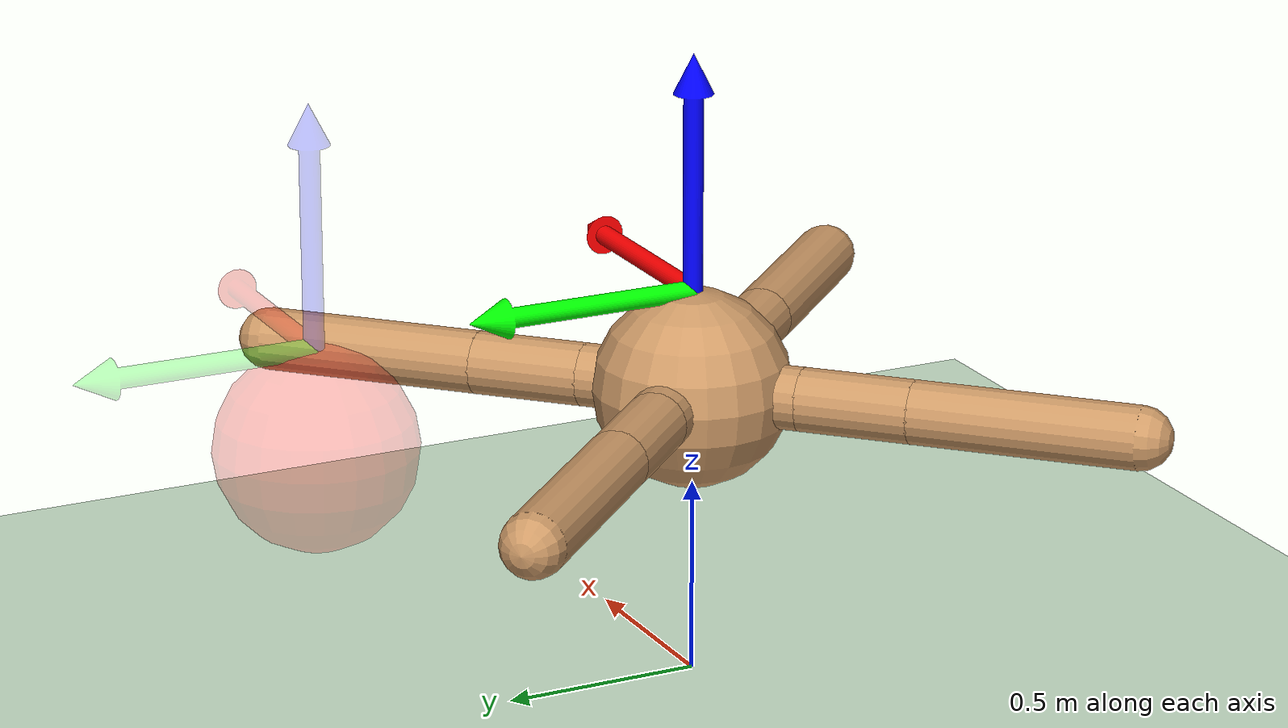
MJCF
<mujoco model="ant">
  <compiler angle="degree" coordinate="local" inertiafromgeom="true"/>
  <option integrator="RK4" timestep="0.01"/>
  <custom>
    <numeric data="0.0 0.0 0.55 1.0 0.0 0.0 0.0 0.0 1.0 0.0 -1.0 0.0 -1.0 0.0 1.0" name="init_qpos"/>
  </custom>
  <default>
    <joint armature="1" damping="1" limited="true"/>
    <geom conaffinity="0" condim="3" density="5.0" friction="1 0.5 0.5" margin="0.01" rgba="0.8 0.6 0.4 1"/>
  </default>
  <asset>
    <texture builtin="gradient" height="100" rgb1="1 1 1" rgb2="0 0 0" type="skybox" width="100"/>
    <texture builtin="flat" height="1278" mark="cross" markrgb="1 1 1" name="texgeom" random="0.01" rgb1="0.8 0.6 0.4" rgb2="0.8 0.6 0.4" type="cube" width="127"/>
    <texture builtin="checker" height="100" name="texplane" rgb1="0 0 0" rgb2="0.8 0.8 0.8" type="2d" width="100"/>
    <texture builtin="flat" name="x_tex" height="32" width="32" rgb1="0 0 1" type="cube"/>

    <material name="x_mat" shininess="0.03" specular="0.75" texture="x_tex"/>

    <material name="MatPlane" reflectance="0.5" shininess="1" specular="1" texrepeat="60 60" texture="texplane"/>
    <material name="geom" texture="texgeom" texuniform="true"/>
    <mesh file="arrow.stl" name="arr_x" refquat="0 0.7071068 0 0.7071068" scale="0.5 0.5 0.5"/>
    <mesh file="arrow.stl" name="arr_y" refquat="0.7071068 0.7071068 0 0" scale="0.5 0.5 0.5"/>
    <mesh file="arrow.stl" name="arr_z" scale="0.5 0.5 0.5"/>

  </asset>
  <worldbody>
    <light cutoff="100" diffuse="1 1 1" dir="-0 0 -1.3" directional="true" exponent="1" pos="0 0 1.3" specular=".1 .1 .1"/>
    <geom conaffinity="1" condim="3" material="MatPlane" name="floor" pos="0 0 0" rgba="0.8 0.9 0.8 1" size="40 40 40" type="plane"/>

    <body name="torso" pos="0 0 0.75">
      <camera name="track" mode="trackcom" pos="0 -4 0.7" xyaxes="1 0 0 0 0.2 1"/>

      <geom name="torso_geom" pos="0 0 0" size="0.25" type="sphere"/>
      <geom type="mesh" mesh="arr_x" name="ax" rgba="1 0 0 1" pos="0 0 0.25" mass="0" contype="0" conaffinity="0"/>
		  <geom type="mesh" mesh="arr_y" name="ay" rgba="0 1 0 1" pos="0 0 0.25" mass="0" contype="0" conaffinity="0"/>
      <geom type="mesh" mesh="arr_z" name="az" rgba="0 0 1 1" pos="0 0 0.25" mass="0" contype="0" conaffinity="0"/>
      <joint armature="0" damping="0" limited="false" margin="0.01" name="root" pos="0 0 0" type="free"/>
      <body name="front_left_leg" pos="0 0 0">
        <geom fromto="0.0 0.0 0.0 0.2 0.2 0.0" name="aux_1_geom" size="0.08" type="capsule"/>
        <body name="aux_1" pos="0.2 0.2 0">
          <joint axis="0 0 1" name="hip_1" pos="0.0 0.0 0.0" range="-30 30" type="hinge"/>
          <geom fromto="0.0 0.0 0.0 0.2 0.2 0.0" name="left_leg_geom" size="0.08" type="capsule"/>
          <body pos="0.2 0.2 0">
            <joint axis="-1 1 0" name="ankle_1" pos="0.0 0.0 0.0" range="30 70" type="hinge"/>
            <geom fromto="0.0 0.0 0.0 0.4 0.4 0.0" name="left_ankle_geom" size="0.08" type="capsule"/>
          </body>
        </body>
      </body>
      <body name="front_right_leg" pos="0 0 0">
        <geom fromto="0.0 0.0 0.0 -0.2 0.2 0.0" name="aux_2_geom" size="0.08" type="capsule"/>
        <body name="aux_2" pos="-0.2 0.2 0">
          <joint axis="0 0 1" name="hip_2" pos="0.0 0.0 0.0" range="-30 30" type="hinge"/>
          <geom fromto="0.0 0.0 0.0 -0.2 0.2 0.0" name="right_leg_geom" size="0.08" type="capsule"/>
          <body pos="-0.2 0.2 0">
            <joint axis="1 1 0" name="ankle_2" pos="0.0 0.0 0.0" range="-70 -30" type="hinge"/>
            <geom fromto="0.0 0.0 0.0 -0.4 0.4 0.0" name="right_ankle_geom" size="0.08" type="capsule"/>
          </body>
        </body>
      </body>
      <body name="back_leg" pos="0 0 0">
        <geom fromto="0.0 0.0 0.0 -0.2 -0.2 0.0" name="aux_3_geom" size="0.08" type="capsule"/>
        <body name="aux_3" pos="-0.2 -0.2 0">
          <joint axis="0 0 1" name="hip_3" pos="0.0 0.0 0.0" range="-30 30" type="hinge"/>
          <geom fromto="0.0 0.0 0.0 -0.2 -0.2 0.0" name="back_leg_geom" size="0.08" type="capsule"/>
          <body pos="-0.2 -0.2 0">
            <joint axis="-1 1 0" name="ankle_3" pos="0.0 0.0 0.0" range="-70 -30" type="hinge"/>
            <geom fromto="0.0 0.0 0.0 -0.4 -0.4 0.0" name="third_ankle_geom" size="0.08" type="capsule"/>
          </body>
        </body>
      </body>
      <body name="right_back_leg" pos="0 0 0">
        <geom fromto="0.0 0.0 0.0 0.2 -0.2 0.0" name="aux_4_geom" size="0.08" type="capsule"/>
        <body name="aux_4" pos="0.2 -0.2 0">
          <joint axis="0 0 1" name="hip_4" pos="0.0 0.0 0.0" range="-30 30" type="hinge"/>
          <geom fromto="0.0 0.0 0.0 0.2 -0.2 0.0" name="rightback_leg_geom" size="0.08" type="capsule"/>
          <body pos="0.2 -0.2 0">
            <joint axis="1 1 0" name="ankle_4" pos="0.0 0.0 0.0" range="30 70" type="hinge"/>
            <geom fromto="0.0 0.0 0.0 0.4 -0.4 0.0" name="fourth_ankle_geom" size="0.08" type="capsule"/>
          </body>
        </body>
      </body>
    </body>
    <body name="goal" pos="0 1 0.75">
      <geom name="goal_geom" pos="0 0 0" size="0.25" rgba="1 0 0 .25" contype="0" conaffinity="0" type="sphere"/>

      <geom type="mesh" mesh="arr_x" name="gax" rgba="1 0 0 .25" pos="0 0 0.25" contype="0" conaffinity="0"/>
		  <geom type="mesh" mesh="arr_y" name="gay" rgba="0 1 0 .25" pos="0 0 0.25" contype="0" conaffinity="0"/>
      <geom type="mesh" mesh="arr_z" name="gaz" rgba="0 0 1 .25" pos="0 0 0.25" contype="0" conaffinity="0"/>
    </body>
  </worldbody>
  <actuator>
    <motor ctrllimited="true" ctrlrange="-1.0 1.0" joint="hip_4" gear="150"/>
    <motor ctrllimited="true" ctrlrange="-1.0 1.0" joint="ankle_4" gear="150"/>
    <motor ctrllimited="true" ctrlrange="-1.0 1.0" joint="hip_1" gear="150"/>
    <motor ctrllimited="true" ctrlrange="-1.0 1.0" joint="ankle_1" gear="150"/>
    <motor ctrllimited="true" ctrlrange="-1.0 1.0" joint="hip_2" gear="150"/>
    <motor ctrllimited="true" ctrlrange="-1.0 1.0" joint="ankle_2" gear="150"/>
    <motor ctrllimited="true" ctrlrange="-1.0 1.0" joint="hip_3" gear="150"/>
    <motor ctrllimited="true" ctrlrange="-1.0 1.0" joint="ankle_3" gear="150"/>
  </actuator>
</mujoco>
